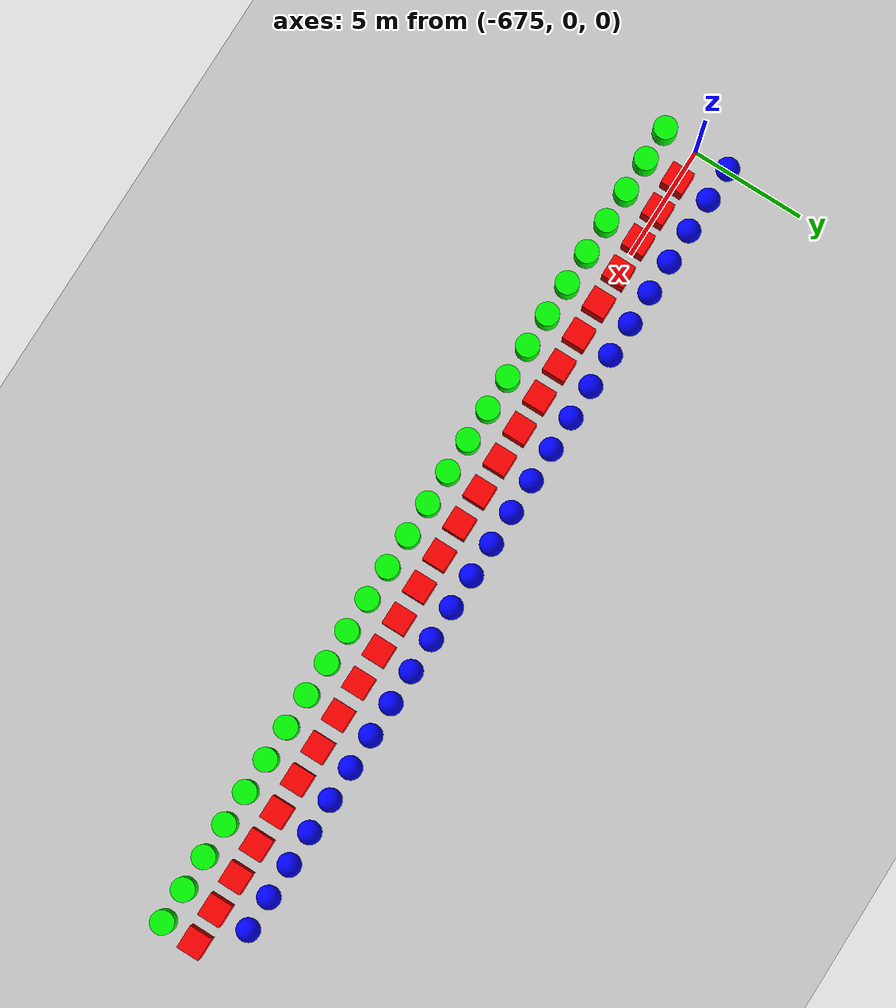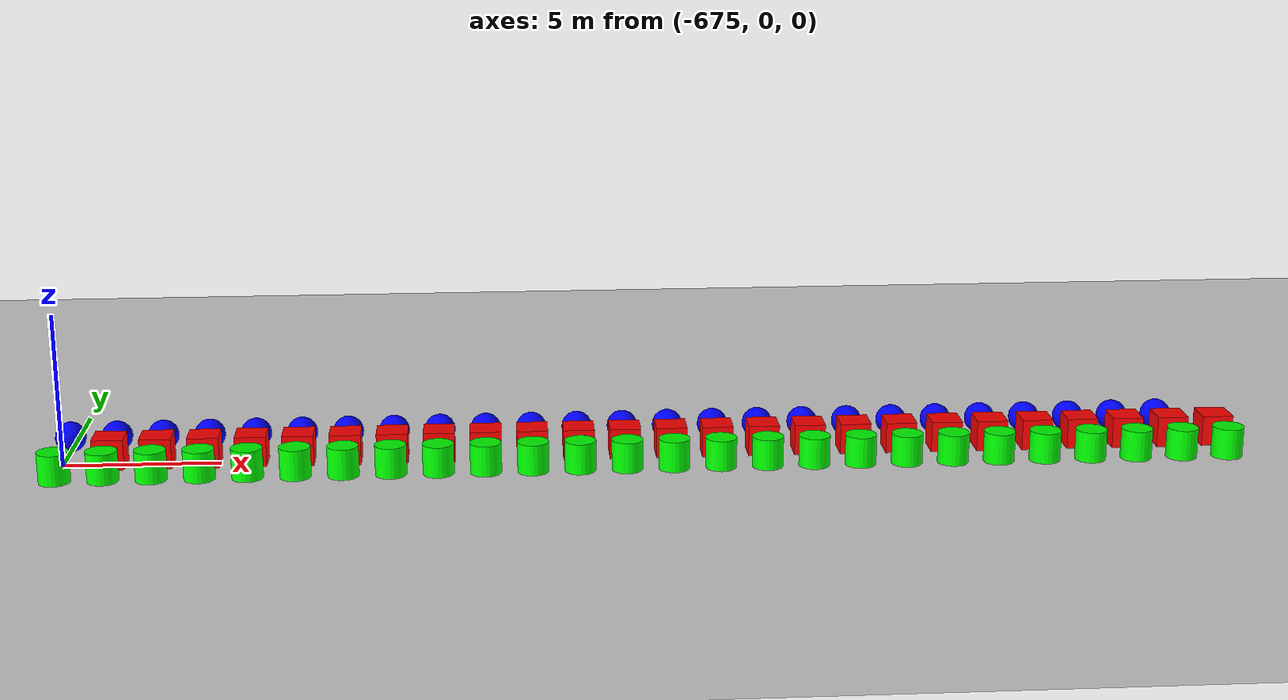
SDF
<sdf version="1.6">
 <world name="shapes">
  <model name="ground_plane">
   <static>true</static>
   <link name="link">
    <collision name="collision">
     <geometry><plane><normal>0 0 1</normal><size>100 100</size></plane></geometry>
    </collision>
    <visual name="visual">
     <geometry><plane><normal>0 0 1</normal><size>100 100</size></plane></geometry>
     <material>
      <ambient>0.8 0.8 0.8 1</ambient>
      <diffuse>0.8 0.8 0.8 1</diffuse>
      <specular>0.8 0.8 0.8 1</specular>
     </material>
    </visual>
   </link>
  </model>
  <model name="cylinder_50">
   <pose>-675.0 -1.5 0.5 0 0 0</pose>
   <link name="cylinder_link">
    <inertial>
     <inertia><ixx>2</ixx><ixy>0</ixy><ixz>0</ixz><iyy>2</iyy><iyz>0</iyz><izz>2</izz></inertia>
     <mass>2.0</mass>
    </inertial>
    <collision name="cylinder_collision">
     <geometry><cylinder><radius>0.5</radius><length>1.0</length></cylinder></geometry>
    </collision>
    <visual name="cylinder_visual">
     <geometry><cylinder><radius>0.5</radius><length>1.0</length></cylinder></geometry>
     <material><ambient>0 1 0 1</ambient><diffuse>0 1 0 1</diffuse><specular>0 1 0 1</specular></material>
    </visual>
   </link>
  </model>
  <model name="sphere_50">
   <pose>-675.0 1.5 0.5 0 0 0</pose>
   <link name="sphere_link">
    <inertial>
     <inertia><ixx>3</ixx><ixy>0</ixy><ixz>0</ixz><iyy>3</iyy><iyz>0</iyz><izz>3</izz></inertia>
     <mass>3.0</mass>
    </inertial>
    <collision name="sphere_collision"><geometry><sphere><radius>0.5</radius></sphere></geometry></collision>
    <visual name="sphere_visual">
     <geometry><sphere><radius>0.5</radius></sphere></geometry>
     <material><ambient>0 0 1 1</ambient><diffuse>0 0 1 1</diffuse><specular>0 0 1 1</specular></material>
    </visual>
   </link>
  </model>
  <model name="box_51">
   <pose>-673.5 0 0.5 0 0 0</pose>
   <link name="box_link">
    <inertial>
     <inertia><ixx>1</ixx><ixy>0</ixy><ixz>0</ixz><iyy>1</iyy><iyz>0</iyz><izz>1</izz></inertia>
     <mass>1.0</mass>
    </inertial>
    <collision name="box_collision"><geometry><box><size>1 1 1</size></box></geometry></collision>
    <visual name="box_visual">
     <geometry><box><size>1 1 1</size></box></geometry>
     <material><ambient>1 0 0 1</ambient><diffuse>1 0 0 1</diffuse><specular>1 0 0 1</specular></material>
    </visual>
   </link>
  </model>
  <model name="cylinder_51">
   <pose>-673.5 -1.5 0.5 0 0 0</pose>
   <link name="cylinder_link">
    <inertial>
     <inertia><ixx>2</ixx><ixy>0</ixy><ixz>0</ixz><iyy>2</iyy><iyz>0</iyz><izz>2</izz></inertia>
     <mass>2.0</mass>
    </inertial>
    <collision name="cylinder_collision">
     <geometry><cylinder><radius>0.5</radius><length>1.0</length></cylinder></geometry>
    </collision>
    <visual name="cylinder_visual">
     <geometry><cylinder><radius>0.5</radius><length>1.0</length></cylinder></geometry>
     <material><ambient>0 1 0 1</ambient><diffuse>0 1 0 1</diffuse><specular>0 1 0 1</specular></material>
    </visual>
   </link>
  </model>
  <model name="sphere_51">
   <pose>-673.5 1.5 0.5 0 0 0</pose>
   <link name="sphere_link">
    <inertial>
     <inertia><ixx>3</ixx><ixy>0</ixy><ixz>0</ixz><iyy>3</iyy><iyz>0</iyz><izz>3</izz></inertia>
     <mass>3.0</mass>
    </inertial>
    <collision name="sphere_collision"><geometry><sphere><radius>0.5</radius></sphere></geometry></collision>
    <visual name="sphere_visual">
     <geometry><sphere><radius>0.5</radius></sphere></geometry>
     <material><ambient>0 0 1 1</ambient><diffuse>0 0 1 1</diffuse><specular>0 0 1 1</specular></material>
    </visual>
   </link>
  </model>
  <model name="box_52">
   <pose>-672.0 0 0.5 0 0 0</pose>
   <link name="box_link">
    <inertial>
     <inertia><ixx>1</ixx><ixy>0</ixy><ixz>0</ixz><iyy>1</iyy><iyz>0</iyz><izz>1</izz></inertia>
     <mass>1.0</mass>
    </inertial>
    <collision name="box_collision"><geometry><box><size>1 1 1</size></box></geometry></collision>
    <visual name="box_visual">
     <geometry><box><size>1 1 1</size></box></geometry>
     <material><ambient>1 0 0 1</ambient><diffuse>1 0 0 1</diffuse><specular>1 0 0 1</specular></material>
    </visual>
   </link>
  </model>
  <model name="cylinder_52">
   <pose>-672.0 -1.5 0.5 0 0 0</pose>
   <link name="cylinder_link">
    <inertial>
     <inertia><ixx>2</ixx><ixy>0</ixy><ixz>0</ixz><iyy>2</iyy><iyz>0</iyz><izz>2</izz></inertia>
     <mass>2.0</mass>
    </inertial>
    <collision name="cylinder_collision">
     <geometry><cylinder><radius>0.5</radius><length>1.0</length></cylinder></geometry>
    </collision>
    <visual name="cylinder_visual">
     <geometry><cylinder><radius>0.5</radius><length>1.0</length></cylinder></geometry>
     <material><ambient>0 1 0 1</ambient><diffuse>0 1 0 1</diffuse><specular>0 1 0 1</specular></material>
    </visual>
   </link>
  </model>
  <model name="sphere_52">
   <pose>-672.0 1.5 0.5 0 0 0</pose>
   <link name="sphere_link">
    <inertial>
     <inertia><ixx>3</ixx><ixy>0</ixy><ixz>0</ixz><iyy>3</iyy><iyz>0</iyz><izz>3</izz></inertia>
     <mass>3.0</mass>
    </inertial>
    <collision name="sphere_collision"><geometry><sphere><radius>0.5</radius></sphere></geometry></collision>
    <visual name="sphere_visual">
     <geometry><sphere><radius>0.5</radius></sphere></geometry>
     <material><ambient>0 0 1 1</ambient><diffuse>0 0 1 1</diffuse><specular>0 0 1 1</specular></material>
    </visual>
   </link>
  </model>
  <model name="box_53">
   <pose>-670.5 0 0.5 0 0 0</pose>
   <link name="box_link">
    <inertial>
     <inertia><ixx>1</ixx><ixy>0</ixy><ixz>0</ixz><iyy>1</iyy><iyz>0</iyz><izz>1</izz></inertia>
     <mass>1.0</mass>
    </inertial>
    <collision name="box_collision"><geometry><box><size>1 1 1</size></box></geometry></collision>
    <visual name="box_visual">
     <geometry><box><size>1 1 1</size></box></geometry>
     <material><ambient>1 0 0 1</ambient><diffuse>1 0 0 1</diffuse><specular>1 0 0 1</specular></material>
    </visual>
   </link>
  </model>
  <model name="cylinder_53">
   <pose>-670.5 -1.5 0.5 0 0 0</pose>
   <link name="cylinder_link">
    <inertial>
     <inertia><ixx>2</ixx><ixy>0</ixy><ixz>0</ixz><iyy>2</iyy><iyz>0</iyz><izz>2</izz></inertia>
     <mass>2.0</mass>
    </inertial>
    <collision name="cylinder_collision">
     <geometry><cylinder><radius>0.5</radius><length>1.0</length></cylinder></geometry>
    </collision>
    <visual name="cylinder_visual">
     <geometry><cylinder><radius>0.5</radius><length>1.0</length></cylinder></geometry>
     <material><ambient>0 1 0 1</ambient><diffuse>0 1 0 1</diffuse><specular>0 1 0 1</specular></material>
    </visual>
   </link>
  </model>
  <model name="sphere_53">
   <pose>-670.5 1.5 0.5 0 0 0</pose>
   <link name="sphere_link">
    <inertial>
     <inertia><ixx>3</ixx><ixy>0</ixy><ixz>0</ixz><iyy>3</iyy><iyz>0</iyz><izz>3</izz></inertia>
     <mass>3.0</mass>
    </inertial>
    <collision name="sphere_collision"><geometry><sphere><radius>0.5</radius></sphere></geometry></collision>
    <visual name="sphere_visual">
     <geometry><sphere><radius>0.5</radius></sphere></geometry>
     <material><ambient>0 0 1 1</ambient><diffuse>0 0 1 1</diffuse><specular>0 0 1 1</specular></material>
    </visual>
   </link>
  </model>
  <model name="box_54">
   <pose>-669.0 0 0.5 0 0 0</pose>
   <link name="box_link">
    <inertial>
     <inertia><ixx>1</ixx><ixy>0</ixy><ixz>0</ixz><iyy>1</iyy><iyz>0</iyz><izz>1</izz></inertia>
     <mass>1.0</mass>
    </inertial>
    <collision name="box_collision"><geometry><box><size>1 1 1</size></box></geometry></collision>
    <visual name="box_visual">
     <geometry><box><size>1 1 1</size></box></geometry>
     <material><ambient>1 0 0 1</ambient><diffuse>1 0 0 1</diffuse><specular>1 0 0 1</specular></material>
    </visual>
   </link>
  </model>
  <model name="cylinder_54">
   <pose>-669.0 -1.5 0.5 0 0 0</pose>
   <link name="cylinder_link">
    <inertial>
     <inertia><ixx>2</ixx><ixy>0</ixy><ixz>0</ixz><iyy>2</iyy><iyz>0</iyz><izz>2</izz></inertia>
     <mass>2.0</mass>
    </inertial>
    <collision name="cylinder_collision">
     <geometry><cylinder><radius>0.5</radius><length>1.0</length></cylinder></geometry>
    </collision>
    <visual name="cylinder_visual">
     <geometry><cylinder><radius>0.5</radius><length>1.0</length></cylinder></geometry>
     <material><ambient>0 1 0 1</ambient><diffuse>0 1 0 1</diffuse><specular>0 1 0 1</specular></material>
    </visual>
   </link>
  </model>
  <model name="sphere_54">
   <pose>-669.0 1.5 0.5 0 0 0</pose>
   <link name="sphere_link">
    <inertial>
     <inertia><ixx>3</ixx><ixy>0</ixy><ixz>0</ixz><iyy>3</iyy><iyz>0</iyz><izz>3</izz></inertia>
     <mass>3.0</mass>
    </inertial>
    <collision name="sphere_collision"><geometry><sphere><radius>0.5</radius></sphere></geometry></collision>
    <visual name="sphere_visual">
     <geometry><sphere><radius>0.5</radius></sphere></geometry>
     <material><ambient>0 0 1 1</ambient><diffuse>0 0 1 1</diffuse><specular>0 0 1 1</specular></material>
    </visual>
   </link>
  </model>
  <model name="box_55">
   <pose>-667.5 0 0.5 0 0 0</pose>
   <link name="box_link">
    <inertial>
     <inertia><ixx>1</ixx><ixy>0</ixy><ixz>0</ixz><iyy>1</iyy><iyz>0</iyz><izz>1</izz></inertia>
     <mass>1.0</mass>
    </inertial>
    <collision name="box_collision"><geometry><box><size>1 1 1</size></box></geometry></collision>
    <visual name="box_visual">
     <geometry><box><size>1 1 1</size></box></geometry>
     <material><ambient>1 0 0 1</ambient><diffuse>1 0 0 1</diffuse><specular>1 0 0 1</specular></material>
    </visual>
   </link>
  </model>
  <model name="cylinder_55">
   <pose>-667.5 -1.5 0.5 0 0 0</pose>
   <link name="cylinder_link">
    <inertial>
     <inertia><ixx>2</ixx><ixy>0</ixy><ixz>0</ixz><iyy>2</iyy><iyz>0</iyz><izz>2</izz></inertia>
     <mass>2.0</mass>
    </inertial>
    <collision name="cylinder_collision">
     <geometry><cylinder><radius>0.5</radius><length>1.0</length></cylinder></geometry>
    </collision>
    <visual name="cylinder_visual">
     <geometry><cylinder><radius>0.5</radius><length>1.0</length></cylinder></geometry>
     <material><ambient>0 1 0 1</ambient><diffuse>0 1 0 1</diffuse><specular>0 1 0 1</specular></material>
    </visual>
   </link>
  </model>
  <model name="sphere_55">
   <pose>-667.5 1.5 0.5 0 0 0</pose>
   <link name="sphere_link">
    <inertial>
     <inertia><ixx>3</ixx><ixy>0</ixy><ixz>0</ixz><iyy>3</iyy><iyz>0</iyz><izz>3</izz></inertia>
     <mass>3.0</mass>
    </inertial>
    <collision name="sphere_collision"><geometry><sphere><radius>0.5</radius></sphere></geometry></collision>
    <visual name="sphere_visual">
     <geometry><sphere><radius>0.5</radius></sphere></geometry>
     <material><ambient>0 0 1 1</ambient><diffuse>0 0 1 1</diffuse><specular>0 0 1 1</specular></material>
    </visual>
   </link>
  </model>
  <model name="box_56">
   <pose>-666.0 0 0.5 0 0 0</pose>
   <link name="box_link">
    <inertial>
     <inertia><ixx>1</ixx><ixy>0</ixy><ixz>0</ixz><iyy>1</iyy><iyz>0</iyz><izz>1</izz></inertia>
     <mass>1.0</mass>
    </inertial>
    <collision name="box_collision"><geometry><box><size>1 1 1</size></box></geometry></collision>
    <visual name="box_visual">
     <geometry><box><size>1 1 1</size></box></geometry>
     <material><ambient>1 0 0 1</ambient><diffuse>1 0 0 1</diffuse><specular>1 0 0 1</specular></material>
    </visual>
   </link>
  </model>
  <model name="cylinder_56">
   <pose>-666.0 -1.5 0.5 0 0 0</pose>
   <link name="cylinder_link">
    <inertial>
     <inertia><ixx>2</ixx><ixy>0</ixy><ixz>0</ixz><iyy>2</iyy><iyz>0</iyz><izz>2</izz></inertia>
     <mass>2.0</mass>
    </inertial>
    <collision name="cylinder_collision">
     <geometry><cylinder><radius>0.5</radius><length>1.0</length></cylinder></geometry>
    </collision>
    <visual name="cylinder_visual">
     <geometry><cylinder><radius>0.5</radius><length>1.0</length></cylinder></geometry>
     <material><ambient>0 1 0 1</ambient><diffuse>0 1 0 1</diffuse><specular>0 1 0 1</specular></material>
    </visual>
   </link>
  </model>
  <model name="sphere_56">
   <pose>-666.0 1.5 0.5 0 0 0</pose>
   <link name="sphere_link">
    <inertial>
     <inertia><ixx>3</ixx><ixy>0</ixy><ixz>0</ixz><iyy>3</iyy><iyz>0</iyz><izz>3</izz></inertia>
     <mass>3.0</mass>
    </inertial>
    <collision name="sphere_collision"><geometry><sphere><radius>0.5</radius></sphere></geometry></collision>
    <visual name="sphere_visual">
     <geometry><sphere><radius>0.5</radius></sphere></geometry>
     <material><ambient>0 0 1 1</ambient><diffuse>0 0 1 1</diffuse><specular>0 0 1 1</specular></material>
    </visual>
   </link>
  </model>
  <model name="box_57">
   <pose>-664.5 0 0.5 0 0 0</pose>
   <link name="box_link">
    <inertial>
     <inertia><ixx>1</ixx><ixy>0</ixy><ixz>0</ixz><iyy>1</iyy><iyz>0</iyz><izz>1</izz></inertia>
     <mass>1.0</mass>
    </inertial>
    <collision name="box_collision"><geometry><box><size>1 1 1</size></box></geometry></collision>
    <visual name="box_visual">
     <geometry><box><size>1 1 1</size></box></geometry>
     <material><ambient>1 0 0 1</ambient><diffuse>1 0 0 1</diffuse><specular>1 0 0 1</specular></material>
    </visual>
   </link>
  </model>
  <model name="cylinder_57">
   <pose>-664.5 -1.5 0.5 0 0 0</pose>
   <link name="cylinder_link">
    <inertial>
     <inertia><ixx>2</ixx><ixy>0</ixy><ixz>0</ixz><iyy>2</iyy><iyz>0</iyz><izz>2</izz></inertia>
     <mass>2.0</mass>
    </inertial>
    <collision name="cylinder_collision">
     <geometry><cylinder><radius>0.5</radius><length>1.0</length></cylinder></geometry>
    </collision>
    <visual name="cylinder_visual">
     <geometry><cylinder><radius>0.5</radius><length>1.0</length></cylinder></geometry>
     <material><ambient>0 1 0 1</ambient><diffuse>0 1 0 1</diffuse><specular>0 1 0 1</specular></material>
    </visual>
   </link>
  </model>
  <model name="sphere_57">
   <pose>-664.5 1.5 0.5 0 0 0</pose>
   <link name="sphere_link">
    <inertial>
     <inertia><ixx>3</ixx><ixy>0</ixy><ixz>0</ixz><iyy>3</iyy><iyz>0</iyz><izz>3</izz></inertia>
     <mass>3.0</mass>
    </inertial>
    <collision name="sphere_collision"><geometry><sphere><radius>0.5</radius></sphere></geometry></collision>
    <visual name="sphere_visual">
     <geometry><sphere><radius>0.5</radius></sphere></geometry>
     <material><ambient>0 0 1 1</ambient><diffuse>0 0 1 1</diffuse><specular>0 0 1 1</specular></material>
    </visual>
   </link>
  </model>
  <model name="box_58">
   <pose>-663.0 0 0.5 0 0 0</pose>
   <link name="box_link">
    <inertial>
     <inertia><ixx>1</ixx><ixy>0</ixy><ixz>0</ixz><iyy>1</iyy><iyz>0</iyz><izz>1</izz></inertia>
     <mass>1.0</mass>
    </inertial>
    <collision name="box_collision"><geometry><box><size>1 1 1</size></box></geometry></collision>
    <visual name="box_visual">
     <geometry><box><size>1 1 1</size></box></geometry>
     <material><ambient>1 0 0 1</ambient><diffuse>1 0 0 1</diffuse><specular>1 0 0 1</specular></material>
    </visual>
   </link>
  </model>
  <model name="cylinder_58">
   <pose>-663.0 -1.5 0.5 0 0 0</pose>
   <link name="cylinder_link">
    <inertial>
     <inertia><ixx>2</ixx><ixy>0</ixy><ixz>0</ixz><iyy>2</iyy><iyz>0</iyz><izz>2</izz></inertia>
     <mass>2.0</mass>
    </inertial>
    <collision name="cylinder_collision">
     <geometry><cylinder><radius>0.5</radius><length>1.0</length></cylinder></geometry>
    </collision>
    <visual name="cylinder_visual">
     <geometry><cylinder><radius>0.5</radius><length>1.0</length></cylinder></geometry>
     <material><ambient>0 1 0 1</ambient><diffuse>0 1 0 1</diffuse><specular>0 1 0 1</specular></material>
    </visual>
   </link>
  </model>
  <model name="sphere_58">
   <pose>-663.0 1.5 0.5 0 0 0</pose>
   <link name="sphere_link">
    <inertial>
     <inertia><ixx>3</ixx><ixy>0</ixy><ixz>0</ixz><iyy>3</iyy><iyz>0</iyz><izz>3</izz></inertia>
     <mass>3.0</mass>
    </inertial>
    <collision name="sphere_collision"><geometry><sphere><radius>0.5</radius></sphere></geometry></collision>
    <visual name="sphere_visual">
     <geometry><sphere><radius>0.5</radius></sphere></geometry>
     <material><ambient>0 0 1 1</ambient><diffuse>0 0 1 1</diffuse><specular>0 0 1 1</specular></material>
    </visual>
   </link>
  </model>
  <model name="box_59">
   <pose>-661.5 0 0.5 0 0 0</pose>
   <link name="box_link">
    <inertial>
     <inertia><ixx>1</ixx><ixy>0</ixy><ixz>0</ixz><iyy>1</iyy><iyz>0</iyz><izz>1</izz></inertia>
     <mass>1.0</mass>
    </inertial>
    <collision name="box_collision"><geometry><box><size>1 1 1</size></box></geometry></collision>
    <visual name="box_visual">
     <geometry><box><size>1 1 1</size></box></geometry>
     <material><ambient>1 0 0 1</ambient><diffuse>1 0 0 1</diffuse><specular>1 0 0 1</specular></material>
    </visual>
   </link>
  </model>
  <model name="cylinder_59">
   <pose>-661.5 -1.5 0.5 0 0 0</pose>
   <link name="cylinder_link">
    <inertial>
     <inertia><ixx>2</ixx><ixy>0</ixy><ixz>0</ixz><iyy>2</iyy><iyz>0</iyz><izz>2</izz></inertia>
     <mass>2.0</mass>
    </inertial>
    <collision name="cylinder_collision">
     <geometry><cylinder><radius>0.5</radius><length>1.0</length></cylinder></geometry>
    </collision>
    <visual name="cylinder_visual">
     <geometry><cylinder><radius>0.5</radius><length>1.0</length></cylinder></geometry>
     <material><ambient>0 1 0 1</ambient><diffuse>0 1 0 1</diffuse><specular>0 1 0 1</specular></material>
    </visual>
   </link>
  </model>
  <model name="sphere_59">
   <pose>-661.5 1.5 0.5 0 0 0</pose>
   <link name="sphere_link">
    <inertial>
     <inertia><ixx>3</ixx><ixy>0</ixy><ixz>0</ixz><iyy>3</iyy><iyz>0</iyz><izz>3</izz></inertia>
     <mass>3.0</mass>
    </inertial>
    <collision name="sphere_collision"><geometry><sphere><radius>0.5</radius></sphere></geometry></collision>
    <visual name="sphere_visual">
     <geometry><sphere><radius>0.5</radius></sphere></geometry>
     <material><ambient>0 0 1 1</ambient><diffuse>0 0 1 1</diffuse><specular>0 0 1 1</specular></material>
    </visual>
   </link>
  </model>
  <model name="box_60">
   <pose>-660.0 0 0.5 0 0 0</pose>
   <link name="box_link">
    <inertial>
     <inertia><ixx>1</ixx><ixy>0</ixy><ixz>0</ixz><iyy>1</iyy><iyz>0</iyz><izz>1</izz></inertia>
     <mass>1.0</mass>
    </inertial>
    <collision name="box_collision"><geometry><box><size>1 1 1</size></box></geometry></collision>
    <visual name="box_visual">
     <geometry><box><size>1 1 1</size></box></geometry>
     <material><ambient>1 0 0 1</ambient><diffuse>1 0 0 1</diffuse><specular>1 0 0 1</specular></material>
    </visual>
   </link>
  </model>
  <model name="cylinder_60">
   <pose>-660.0 -1.5 0.5 0 0 0</pose>
   <link name="cylinder_link">
    <inertial>
     <inertia><ixx>2</ixx><ixy>0</ixy><ixz>0</ixz><iyy>2</iyy><iyz>0</iyz><izz>2</izz></inertia>
     <mass>2.0</mass>
    </inertial>
    <collision name="cylinder_collision">
     <geometry><cylinder><radius>0.5</radius><length>1.0</length></cylinder></geometry>
    </collision>
    <visual name="cylinder_visual">
     <geometry><cylinder><radius>0.5</radius><length>1.0</length></cylinder></geometry>
     <material><ambient>0 1 0 1</ambient><diffuse>0 1 0 1</diffuse><specular>0 1 0 1</specular></material>
    </visual>
   </link>
  </model>
  <model name="sphere_60">
   <pose>-660.0 1.5 0.5 0 0 0</pose>
   <link name="sphere_link">
    <inertial>
     <inertia><ixx>3</ixx><ixy>0</ixy><ixz>0</ixz><iyy>3</iyy><iyz>0</iyz><izz>3</izz></inertia>
     <mass>3.0</mass>
    </inertial>
    <collision name="sphere_collision"><geometry><sphere><radius>0.5</radius></sphere></geometry></collision>
    <visual name="sphere_visual">
     <geometry><sphere><radius>0.5</radius></sphere></geometry>
     <material><ambient>0 0 1 1</ambient><diffuse>0 0 1 1</diffuse><specular>0 0 1 1</specular></material>
    </visual>
   </link>
  </model>
  <model name="box_61">
   <pose>-658.5 0 0.5 0 0 0</pose>
   <link name="box_link">
    <inertial>
     <inertia><ixx>1</ixx><ixy>0</ixy><ixz>0</ixz><iyy>1</iyy><iyz>0</iyz><izz>1</izz></inertia>
     <mass>1.0</mass>
    </inertial>
    <collision name="box_collision"><geometry><box><size>1 1 1</size></box></geometry></collision>
    <visual name="box_visual">
     <geometry><box><size>1 1 1</size></box></geometry>
     <material><ambient>1 0 0 1</ambient><diffuse>1 0 0 1</diffuse><specular>1 0 0 1</specular></material>
    </visual>
   </link>
  </model>
  <model name="cylinder_61">
   <pose>-658.5 -1.5 0.5 0 0 0</pose>
   <link name="cylinder_link">
    <inertial>
     <inertia><ixx>2</ixx><ixy>0</ixy><ixz>0</ixz><iyy>2</iyy><iyz>0</iyz><izz>2</izz></inertia>
     <mass>2.0</mass>
    </inertial>
    <collision name="cylinder_collision">
     <geometry><cylinder><radius>0.5</radius><length>1.0</length></cylinder></geometry>
    </collision>
    <visual name="cylinder_visual">
     <geometry><cylinder><radius>0.5</radius><length>1.0</length></cylinder></geometry>
     <material><ambient>0 1 0 1</ambient><diffuse>0 1 0 1</diffuse><specular>0 1 0 1</specular></material>
    </visual>
   </link>
  </model>
  <model name="sphere_61">
   <pose>-658.5 1.5 0.5 0 0 0</pose>
   <link name="sphere_link">
    <inertial>
     <inertia><ixx>3</ixx><ixy>0</ixy><ixz>0</ixz><iyy>3</iyy><iyz>0</iyz><izz>3</izz></inertia>
     <mass>3.0</mass>
    </inertial>
    <collision name="sphere_collision"><geometry><sphere><radius>0.5</radius></sphere></geometry></collision>
    <visual name="sphere_visual">
     <geometry><sphere><radius>0.5</radius></sphere></geometry>
     <material><ambient>0 0 1 1</ambient><diffuse>0 0 1 1</diffuse><specular>0 0 1 1</specular></material>
    </visual>
   </link>
  </model>
  <model name="box_62">
   <pose>-657.0 0 0.5 0 0 0</pose>
   <link name="box_link">
    <inertial>
     <inertia><ixx>1</ixx><ixy>0</ixy><ixz>0</ixz><iyy>1</iyy><iyz>0</iyz><izz>1</izz></inertia>
     <mass>1.0</mass>
    </inertial>
    <collision name="box_collision"><geometry><box><size>1 1 1</size></box></geometry></collision>
    <visual name="box_visual">
     <geometry><box><size>1 1 1</size></box></geometry>
     <material><ambient>1 0 0 1</ambient><diffuse>1 0 0 1</diffuse><specular>1 0 0 1</specular></material>
    </visual>
   </link>
  </model>
  <model name="cylinder_62">
   <pose>-657.0 -1.5 0.5 0 0 0</pose>
   <link name="cylinder_link">
    <inertial>
     <inertia><ixx>2</ixx><ixy>0</ixy><ixz>0</ixz><iyy>2</iyy><iyz>0</iyz><izz>2</izz></inertia>
     <mass>2.0</mass>
    </inertial>
    <collision name="cylinder_collision">
     <geometry><cylinder><radius>0.5</radius><length>1.0</length></cylinder></geometry>
    </collision>
    <visual name="cylinder_visual">
     <geometry><cylinder><radius>0.5</radius><length>1.0</length></cylinder></geometry>
     <material><ambient>0 1 0 1</ambient><diffuse>0 1 0 1</diffuse><specular>0 1 0 1</specular></material>
    </visual>
   </link>
  </model>
  <model name="sphere_62">
   <pose>-657.0 1.5 0.5 0 0 0</pose>
   <link name="sphere_link">
    <inertial>
     <inertia><ixx>3</ixx><ixy>0</ixy><ixz>0</ixz><iyy>3</iyy><iyz>0</iyz><izz>3</izz></inertia>
     <mass>3.0</mass>
    </inertial>
    <collision name="sphere_collision"><geometry><sphere><radius>0.5</radius></sphere></geometry></collision>
    <visual name="sphere_visual">
     <geometry><sphere><radius>0.5</radius></sphere></geometry>
     <material><ambient>0 0 1 1</ambient><diffuse>0 0 1 1</diffuse><specular>0 0 1 1</specular></material>
    </visual>
   </link>
  </model>
  <model name="box_63">
   <pose>-655.5 0 0.5 0 0 0</pose>
   <link name="box_link">
    <inertial>
     <inertia><ixx>1</ixx><ixy>0</ixy><ixz>0</ixz><iyy>1</iyy><iyz>0</iyz><izz>1</izz></inertia>
     <mass>1.0</mass>
    </inertial>
    <collision name="box_collision"><geometry><box><size>1 1 1</size></box></geometry></collision>
    <visual name="box_visual">
     <geometry><box><size>1 1 1</size></box></geometry>
     <material><ambient>1 0 0 1</ambient><diffuse>1 0 0 1</diffuse><specular>1 0 0 1</specular></material>
    </visual>
   </link>
  </model>
  <model name="cylinder_63">
   <pose>-655.5 -1.5 0.5 0 0 0</pose>
   <link name="cylinder_link">
    <inertial>
     <inertia><ixx>2</ixx><ixy>0</ixy><ixz>0</ixz><iyy>2</iyy><iyz>0</iyz><izz>2</izz></inertia>
     <mass>2.0</mass>
    </inertial>
    <collision name="cylinder_collision">
     <geometry><cylinder><radius>0.5</radius><length>1.0</length></cylinder></geometry>
    </collision>
    <visual name="cylinder_visual">
     <geometry><cylinder><radius>0.5</radius><length>1.0</length></cylinder></geometry>
     <material><ambient>0 1 0 1</ambient><diffuse>0 1 0 1</diffuse><specular>0 1 0 1</specular></material>
    </visual>
   </link>
  </model>
  <model name="sphere_63">
   <pose>-655.5 1.5 0.5 0 0 0</pose>
   <link name="sphere_link">
    <inertial>
     <inertia><ixx>3</ixx><ixy>0</ixy><ixz>0</ixz><iyy>3</iyy><iyz>0</iyz><izz>3</izz></inertia>
     <mass>3.0</mass>
    </inertial>
    <collision name="sphere_collision"><geometry><sphere><radius>0.5</radius></sphere></geometry></collision>
    <visual name="sphere_visual">
     <geometry><sphere><radius>0.5</radius></sphere></geometry>
     <material><ambient>0 0 1 1</ambient><diffuse>0 0 1 1</diffuse><specular>0 0 1 1</specular></material>
    </visual>
   </link>
  </model>
  <model name="box_64">
   <pose>-654.0 0 0.5 0 0 0</pose>
   <link name="box_link">
    <inertial>
     <inertia><ixx>1</ixx><ixy>0</ixy><ixz>0</ixz><iyy>1</iyy><iyz>0</iyz><izz>1</izz></inertia>
     <mass>1.0</mass>
    </inertial>
    <collision name="box_collision"><geometry><box><size>1 1 1</size></box></geometry></collision>
    <visual name="box_visual">
     <geometry><box><size>1 1 1</size></box></geometry>
     <material><ambient>1 0 0 1</ambient><diffuse>1 0 0 1</diffuse><specular>1 0 0 1</specular></material>
    </visual>
   </link>
  </model>
  <model name="cylinder_64">
   <pose>-654.0 -1.5 0.5 0 0 0</pose>
   <link name="cylinder_link">
    <inertial>
     <inertia><ixx>2</ixx><ixy>0</ixy><ixz>0</ixz><iyy>2</iyy><iyz>0</iyz><izz>2</izz></inertia>
     <mass>2.0</mass>
    </inertial>
    <collision name="cylinder_collision">
     <geometry><cylinder><radius>0.5</radius><length>1.0</length></cylinder></geometry>
    </collision>
    <visual name="cylinder_visual">
     <geometry><cylinder><radius>0.5</radius><length>1.0</length></cylinder></geometry>
     <material><ambient>0 1 0 1</ambient><diffuse>0 1 0 1</diffuse><specular>0 1 0 1</specular></material>
    </visual>
   </link>
  </model>
  <model name="sphere_64">
   <pose>-654.0 1.5 0.5 0 0 0</pose>
   <link name="sphere_link">
    <inertial>
     <inertia><ixx>3</ixx><ixy>0</ixy><ixz>0</ixz><iyy>3</iyy><iyz>0</iyz><izz>3</izz></inertia>
     <mass>3.0</mass>
    </inertial>
    <collision name="sphere_collision"><geometry><sphere><radius>0.5</radius></sphere></geometry></collision>
    <visual name="sphere_visual">
     <geometry><sphere><radius>0.5</radius></sphere></geometry>
     <material><ambient>0 0 1 1</ambient><diffuse>0 0 1 1</diffuse><specular>0 0 1 1</specular></material>
    </visual>
   </link>
  </model>
  <model name="box_65">
   <pose>-652.5 0 0.5 0 0 0</pose>
   <link name="box_link">
    <inertial>
     <inertia><ixx>1</ixx><ixy>0</ixy><ixz>0</ixz><iyy>1</iyy><iyz>0</iyz><izz>1</izz></inertia>
     <mass>1.0</mass>
    </inertial>
    <collision name="box_collision"><geometry><box><size>1 1 1</size></box></geometry></collision>
    <visual name="box_visual">
     <geometry><box><size>1 1 1</size></box></geometry>
     <material><ambient>1 0 0 1</ambient><diffuse>1 0 0 1</diffuse><specular>1 0 0 1</specular></material>
    </visual>
   </link>
  </model>
  <model name="cylinder_65">
   <pose>-652.5 -1.5 0.5 0 0 0</pose>
   <link name="cylinder_link">
    <inertial>
     <inertia><ixx>2</ixx><ixy>0</ixy><ixz>0</ixz><iyy>2</iyy><iyz>0</iyz><izz>2</izz></inertia>
     <mass>2.0</mass>
    </inertial>
    <collision name="cylinder_collision">
     <geometry><cylinder><radius>0.5</radius><length>1.0</length></cylinder></geometry>
    </collision>
    <visual name="cylinder_visual">
     <geometry><cylinder><radius>0.5</radius><length>1.0</length></cylinder></geometry>
     <material><ambient>0 1 0 1</ambient><diffuse>0 1 0 1</diffuse><specular>0 1 0 1</specular></material>
    </visual>
   </link>
  </model>
  <model name="sphere_65">
   <pose>-652.5 1.5 0.5 0 0 0</pose>
   <link name="sphere_link">
    <inertial>
     <inertia><ixx>3</ixx><ixy>0</ixy><ixz>0</ixz><iyy>3</iyy><iyz>0</iyz><izz>3</izz></inertia>
     <mass>3.0</mass>
    </inertial>
    <collision name="sphere_collision"><geometry><sphere><radius>0.5</radius></sphere></geometry></collision>
    <visual name="sphere_visual">
     <geometry><sphere><radius>0.5</radius></sphere></geometry>
     <material><ambient>0 0 1 1</ambient><diffuse>0 0 1 1</diffuse><specular>0 0 1 1</specular></material>
    </visual>
   </link>
  </model>
  <model name="box_66">
   <pose>-651.0 0 0.5 0 0 0</pose>
   <link name="box_link">
    <inertial>
     <inertia><ixx>1</ixx><ixy>0</ixy><ixz>0</ixz><iyy>1</iyy><iyz>0</iyz><izz>1</izz></inertia>
     <mass>1.0</mass>
    </inertial>
    <collision name="box_collision"><geometry><box><size>1 1 1</size></box></geometry></collision>
    <visual name="box_visual">
     <geometry><box><size>1 1 1</size></box></geometry>
     <material><ambient>1 0 0 1</ambient><diffuse>1 0 0 1</diffuse><specular>1 0 0 1</specular></material>
    </visual>
   </link>
  </model>
  <model name="cylinder_66">
   <pose>-651.0 -1.5 0.5 0 0 0</pose>
   <link name="cylinder_link">
    <inertial>
     <inertia><ixx>2</ixx><ixy>0</ixy><ixz>0</ixz><iyy>2</iyy><iyz>0</iyz><izz>2</izz></inertia>
     <mass>2.0</mass>
    </inertial>
    <collision name="cylinder_collision">
     <geometry><cylinder><radius>0.5</radius><length>1.0</length></cylinder></geometry>
    </collision>
    <visual name="cylinder_visual">
     <geometry><cylinder><radius>0.5</radius><length>1.0</length></cylinder></geometry>
     <material><ambient>0 1 0 1</ambient><diffuse>0 1 0 1</diffuse><specular>0 1 0 1</specular></material>
    </visual>
   </link>
  </model>
  <model name="sphere_66">
   <pose>-651.0 1.5 0.5 0 0 0</pose>
   <link name="sphere_link">
    <inertial>
     <inertia><ixx>3</ixx><ixy>0</ixy><ixz>0</ixz><iyy>3</iyy><iyz>0</iyz><izz>3</izz></inertia>
     <mass>3.0</mass>
    </inertial>
    <collision name="sphere_collision"><geometry><sphere><radius>0.5</radius></sphere></geometry></collision>
    <visual name="sphere_visual">
     <geometry><sphere><radius>0.5</radius></sphere></geometry>
     <material><ambient>0 0 1 1</ambient><diffuse>0 0 1 1</diffuse><specular>0 0 1 1</specular></material>
    </visual>
   </link>
  </model>
  <model name="box_67">
   <pose>-649.5 0 0.5 0 0 0</pose>
   <link name="box_link">
    <inertial>
     <inertia><ixx>1</ixx><ixy>0</ixy><ixz>0</ixz><iyy>1</iyy><iyz>0</iyz><izz>1</izz></inertia>
     <mass>1.0</mass>
    </inertial>
    <collision name="box_collision"><geometry><box><size>1 1 1</size></box></geometry></collision>
    <visual name="box_visual">
     <geometry><box><size>1 1 1</size></box></geometry>
     <material><ambient>1 0 0 1</ambient><diffuse>1 0 0 1</diffuse><specular>1 0 0 1</specular></material>
    </visual>
   </link>
  </model>
  <model name="cylinder_67">
   <pose>-649.5 -1.5 0.5 0 0 0</pose>
   <link name="cylinder_link">
    <inertial>
     <inertia><ixx>2</ixx><ixy>0</ixy><ixz>0</ixz><iyy>2</iyy><iyz>0</iyz><izz>2</izz></inertia>
     <mass>2.0</mass>
    </inertial>
    <collision name="cylinder_collision">
     <geometry><cylinder><radius>0.5</radius><length>1.0</length></cylinder></geometry>
    </collision>
    <visual name="cylinder_visual">
     <geometry><cylinder><radius>0.5</radius><length>1.0</length></cylinder></geometry>
     <material><ambient>0 1 0 1</ambient><diffuse>0 1 0 1</diffuse><specular>0 1 0 1</specular></material>
    </visual>
   </link>
  </model>
  <model name="sphere_67">
   <pose>-649.5 1.5 0.5 0 0 0</pose>
   <link name="sphere_link">
    <inertial>
     <inertia><ixx>3</ixx><ixy>0</ixy><ixz>0</ixz><iyy>3</iyy><iyz>0</iyz><izz>3</izz></inertia>
     <mass>3.0</mass>
    </inertial>
    <collision name="sphere_collision"><geometry><sphere><radius>0.5</radius></sphere></geometry></collision>
    <visual name="sphere_visual">
     <geometry><sphere><radius>0.5</radius></sphere></geometry>
     <material><ambient>0 0 1 1</ambient><diffuse>0 0 1 1</diffuse><specular>0 0 1 1</specular></material>
    </visual>
   </link>
  </model>
  <model name="box_68">
   <pose>-648.0 0 0.5 0 0 0</pose>
   <link name="box_link">
    <inertial>
     <inertia><ixx>1</ixx><ixy>0</ixy><ixz>0</ixz><iyy>1</iyy><iyz>0</iyz><izz>1</izz></inertia>
     <mass>1.0</mass>
    </inertial>
    <collision name="box_collision"><geometry><box><size>1 1 1</size></box></geometry></collision>
    <visual name="box_visual">
     <geometry><box><size>1 1 1</size></box></geometry>
     <material><ambient>1 0 0 1</ambient><diffuse>1 0 0 1</diffuse><specular>1 0 0 1</specular></material>
    </visual>
   </link>
  </model>
  <model name="cylinder_68">
   <pose>-648.0 -1.5 0.5 0 0 0</pose>
   <link name="cylinder_link">
    <inertial>
     <inertia><ixx>2</ixx><ixy>0</ixy><ixz>0</ixz><iyy>2</iyy><iyz>0</iyz><izz>2</izz></inertia>
     <mass>2.0</mass>
    </inertial>
    <collision name="cylinder_collision">
     <geometry><cylinder><radius>0.5</radius><length>1.0</length></cylinder></geometry>
    </collision>
    <visual name="cylinder_visual">
     <geometry><cylinder><radius>0.5</radius><length>1.0</length></cylinder></geometry>
     <material><ambient>0 1 0 1</ambient><diffuse>0 1 0 1</diffuse><specular>0 1 0 1</specular></material>
    </visual>
   </link>
  </model>
  <model name="sphere_68">
   <pose>-648.0 1.5 0.5 0 0 0</pose>
   <link name="sphere_link">
    <inertial>
     <inertia><ixx>3</ixx><ixy>0</ixy><ixz>0</ixz><iyy>3</iyy><iyz>0</iyz><izz>3</izz></inertia>
     <mass>3.0</mass>
    </inertial>
    <collision name="sphere_collision"><geometry><sphere><radius>0.5</radius></sphere></geometry></collision>
    <visual name="sphere_visual">
     <geometry><sphere><radius>0.5</radius></sphere></geometry>
     <material><ambient>0 0 1 1</ambient><diffuse>0 0 1 1</diffuse><specular>0 0 1 1</specular></material>
    </visual>
   </link>
  </model>
  <model name="box_69">
   <pose>-646.5 0 0.5 0 0 0</pose>
   <link name="box_link">
    <inertial>
     <inertia><ixx>1</ixx><ixy>0</ixy><ixz>0</ixz><iyy>1</iyy><iyz>0</iyz><izz>1</izz></inertia>
     <mass>1.0</mass>
    </inertial>
    <collision name="box_collision"><geometry><box><size>1 1 1</size></box></geometry></collision>
    <visual name="box_visual">
     <geometry><box><size>1 1 1</size></box></geometry>
     <material><ambient>1 0 0 1</ambient><diffuse>1 0 0 1</diffuse><specular>1 0 0 1</specular></material>
    </visual>
   </link>
  </model>
  <model name="cylinder_69">
   <pose>-646.5 -1.5 0.5 0 0 0</pose>
   <link name="cylinder_link">
    <inertial>
     <inertia><ixx>2</ixx><ixy>0</ixy><ixz>0</ixz><iyy>2</iyy><iyz>0</iyz><izz>2</izz></inertia>
     <mass>2.0</mass>
    </inertial>
    <collision name="cylinder_collision">
     <geometry><cylinder><radius>0.5</radius><length>1.0</length></cylinder></geometry>
    </collision>
    <visual name="cylinder_visual">
     <geometry><cylinder><radius>0.5</radius><length>1.0</length></cylinder></geometry>
     <material><ambient>0 1 0 1</ambient><diffuse>0 1 0 1</diffuse><specular>0 1 0 1</specular></material>
    </visual>
   </link>
  </model>
  <model name="sphere_69">
   <pose>-646.5 1.5 0.5 0 0 0</pose>
   <link name="sphere_link">
    <inertial>
     <inertia><ixx>3</ixx><ixy>0</ixy><ixz>0</ixz><iyy>3</iyy><iyz>0</iyz><izz>3</izz></inertia>
     <mass>3.0</mass>
    </inertial>
    <collision name="sphere_collision"><geometry><sphere><radius>0.5</radius></sphere></geometry></collision>
    <visual name="sphere_visual">
     <geometry><sphere><radius>0.5</radius></sphere></geometry>
     <material><ambient>0 0 1 1</ambient><diffuse>0 0 1 1</diffuse><specular>0 0 1 1</specular></material>
    </visual>
   </link>
  </model>
  <model name="box_70">
   <pose>-645.0 0 0.5 0 0 0</pose>
   <link name="box_link">
    <inertial>
     <inertia><ixx>1</ixx><ixy>0</ixy><ixz>0</ixz><iyy>1</iyy><iyz>0</iyz><izz>1</izz></inertia>
     <mass>1.0</mass>
    </inertial>
    <collision name="box_collision"><geometry><box><size>1 1 1</size></box></geometry></collision>
    <visual name="box_visual">
     <geometry><box><size>1 1 1</size></box></geometry>
     <material><ambient>1 0 0 1</ambient><diffuse>1 0 0 1</diffuse><specular>1 0 0 1</specular></material>
    </visual>
   </link>
  </model>
  <model name="cylinder_70">
   <pose>-645.0 -1.5 0.5 0 0 0</pose>
   <link name="cylinder_link">
    <inertial>
     <inertia><ixx>2</ixx><ixy>0</ixy><ixz>0</ixz><iyy>2</iyy><iyz>0</iyz><izz>2</izz></inertia>
     <mass>2.0</mass>
    </inertial>
    <collision name="cylinder_collision">
     <geometry><cylinder><radius>0.5</radius><length>1.0</length></cylinder></geometry>
    </collision>
    <visual name="cylinder_visual">
     <geometry><cylinder><radius>0.5</radius><length>1.0</length></cylinder></geometry>
     <material><ambient>0 1 0 1</ambient><diffuse>0 1 0 1</diffuse><specular>0 1 0 1</specular></material>
    </visual>
   </link>
  </model>
  <model name="sphere_70">
   <pose>-645.0 1.5 0.5 0 0 0</pose>
   <link name="sphere_link">
    <inertial>
     <inertia><ixx>3</ixx><ixy>0</ixy><ixz>0</ixz><iyy>3</iyy><iyz>0</iyz><izz>3</izz></inertia>
     <mass>3.0</mass>
    </inertial>
    <collision name="sphere_collision"><geometry><sphere><radius>0.5</radius></sphere></geometry></collision>
    <visual name="sphere_visual">
     <geometry><sphere><radius>0.5</radius></sphere></geometry>
     <material><ambient>0 0 1 1</ambient><diffuse>0 0 1 1</diffuse><specular>0 0 1 1</specular></material>
    </visual>
   </link>
  </model>
  <model name="box_71">
   <pose>-643.5 0 0.5 0 0 0</pose>
   <link name="box_link">
    <inertial>
     <inertia><ixx>1</ixx><ixy>0</ixy><ixz>0</ixz><iyy>1</iyy><iyz>0</iyz><izz>1</izz></inertia>
     <mass>1.0</mass>
    </inertial>
    <collision name="box_collision"><geometry><box><size>1 1 1</size></box></geometry></collision>
    <visual name="box_visual">
     <geometry><box><size>1 1 1</size></box></geometry>
     <material><ambient>1 0 0 1</ambient><diffuse>1 0 0 1</diffuse><specular>1 0 0 1</specular></material>
    </visual>
   </link>
  </model>
  <model name="cylinder_71">
   <pose>-643.5 -1.5 0.5 0 0 0</pose>
   <link name="cylinder_link">
    <inertial>
     <inertia><ixx>2</ixx><ixy>0</ixy><ixz>0</ixz><iyy>2</iyy><iyz>0</iyz><izz>2</izz></inertia>
     <mass>2.0</mass>
    </inertial>
    <collision name="cylinder_collision">
     <geometry><cylinder><radius>0.5</radius><length>1.0</length></cylinder></geometry>
    </collision>
    <visual name="cylinder_visual">
     <geometry><cylinder><radius>0.5</radius><length>1.0</length></cylinder></geometry>
     <material><ambient>0 1 0 1</ambient><diffuse>0 1 0 1</diffuse><specular>0 1 0 1</specular></material>
    </visual>
   </link>
  </model>
  <model name="sphere_71">
   <pose>-643.5 1.5 0.5 0 0 0</pose>
   <link name="sphere_link">
    <inertial>
     <inertia><ixx>3</ixx><ixy>0</ixy><ixz>0</ixz><iyy>3</iyy><iyz>0</iyz><izz>3</izz></inertia>
     <mass>3.0</mass>
    </inertial>
    <collision name="sphere_collision"><geometry><sphere><radius>0.5</radius></sphere></geometry></collision>
    <visual name="sphere_visual">
     <geometry><sphere><radius>0.5</radius></sphere></geometry>
     <material><ambient>0 0 1 1</ambient><diffuse>0 0 1 1</diffuse><specular>0 0 1 1</specular></material>
    </visual>
   </link>
  </model>
  <model name="box_72">
   <pose>-642.0 0 0.5 0 0 0</pose>
   <link name="box_link">
    <inertial>
     <inertia><ixx>1</ixx><ixy>0</ixy><ixz>0</ixz><iyy>1</iyy><iyz>0</iyz><izz>1</izz></inertia>
     <mass>1.0</mass>
    </inertial>
    <collision name="box_collision"><geometry><box><size>1 1 1</size></box></geometry></collision>
    <visual name="box_visual">
     <geometry><box><size>1 1 1</size></box></geometry>
     <material><ambient>1 0 0 1</ambient><diffuse>1 0 0 1</diffuse><specular>1 0 0 1</specular></material>
    </visual>
   </link>
  </model>
  <model name="cylinder_72">
   <pose>-642.0 -1.5 0.5 0 0 0</pose>
   <link name="cylinder_link">
    <inertial>
     <inertia><ixx>2</ixx><ixy>0</ixy><ixz>0</ixz><iyy>2</iyy><iyz>0</iyz><izz>2</izz></inertia>
     <mass>2.0</mass>
    </inertial>
    <collision name="cylinder_collision">
     <geometry><cylinder><radius>0.5</radius><length>1.0</length></cylinder></geometry>
    </collision>
    <visual name="cylinder_visual">
     <geometry><cylinder><radius>0.5</radius><length>1.0</length></cylinder></geometry>
     <material><ambient>0 1 0 1</ambient><diffuse>0 1 0 1</diffuse><specular>0 1 0 1</specular></material>
    </visual>
   </link>
  </model>
  <model name="sphere_72">
   <pose>-642.0 1.5 0.5 0 0 0</pose>
   <link name="sphere_link">
    <inertial>
     <inertia><ixx>3</ixx><ixy>0</ixy><ixz>0</ixz><iyy>3</iyy><iyz>0</iyz><izz>3</izz></inertia>
     <mass>3.0</mass>
    </inertial>
    <collision name="sphere_collision"><geometry><sphere><radius>0.5</radius></sphere></geometry></collision>
    <visual name="sphere_visual">
     <geometry><sphere><radius>0.5</radius></sphere></geometry>
     <material><ambient>0 0 1 1</ambient><diffuse>0 0 1 1</diffuse><specular>0 0 1 1</specular></material>
    </visual>
   </link>
  </model>
  <model name="box_73">
   <pose>-640.5 0 0.5 0 0 0</pose>
   <link name="box_link">
    <inertial>
     <inertia><ixx>1</ixx><ixy>0</ixy><ixz>0</ixz><iyy>1</iyy><iyz>0</iyz><izz>1</izz></inertia>
     <mass>1.0</mass>
    </inertial>
    <collision name="box_collision"><geometry><box><size>1 1 1</size></box></geometry></collision>
    <visual name="box_visual">
     <geometry><box><size>1 1 1</size></box></geometry>
     <material><ambient>1 0 0 1</ambient><diffuse>1 0 0 1</diffuse><specular>1 0 0 1</specular></material>
    </visual>
   </link>
  </model>
  <model name="cylinder_73">
   <pose>-640.5 -1.5 0.5 0 0 0</pose>
   <link name="cylinder_link">
    <inertial>
     <inertia><ixx>2</ixx><ixy>0</ixy><ixz>0</ixz><iyy>2</iyy><iyz>0</iyz><izz>2</izz></inertia>
     <mass>2.0</mass>
    </inertial>
    <collision name="cylinder_collision">
     <geometry><cylinder><radius>0.5</radius><length>1.0</length></cylinder></geometry>
    </collision>
    <visual name="cylinder_visual">
     <geometry><cylinder><radius>0.5</radius><length>1.0</length></cylinder></geometry>
     <material><ambient>0 1 0 1</ambient><diffuse>0 1 0 1</diffuse><specular>0 1 0 1</specular></material>
    </visual>
   </link>
  </model>
  <model name="sphere_73">
   <pose>-640.5 1.5 0.5 0 0 0</pose>
   <link name="sphere_link">
    <inertial>
     <inertia><ixx>3</ixx><ixy>0</ixy><ixz>0</ixz><iyy>3</iyy><iyz>0</iyz><izz>3</izz></inertia>
     <mass>3.0</mass>
    </inertial>
    <collision name="sphere_collision"><geometry><sphere><radius>0.5</radius></sphere></geometry></collision>
    <visual name="sphere_visual">
     <geometry><sphere><radius>0.5</radius></sphere></geometry>
     <material><ambient>0 0 1 1</ambient><diffuse>0 0 1 1</diffuse><specular>0 0 1 1</specular></material>
    </visual>
   </link>
  </model>
  <model name="box_74">
   <pose>-639.0 0 0.5 0 0 0</pose>
   <link name="box_link">
    <inertial>
     <inertia><ixx>1</ixx><ixy>0</ixy><ixz>0</ixz><iyy>1</iyy><iyz>0</iyz><izz>1</izz></inertia>
     <mass>1.0</mass>
    </inertial>
    <collision name="box_collision"><geometry><box><size>1 1 1</size></box></geometry></collision>
    <visual name="box_visual">
     <geometry><box><size>1 1 1</size></box></geometry>
     <material><ambient>1 0 0 1</ambient><diffuse>1 0 0 1</diffuse><specular>1 0 0 1</specular></material>
    </visual>
   </link>
  </model>
  <model name="cylinder_74">
   <pose>-639.0 -1.5 0.5 0 0 0</pose>
   <link name="cylinder_link">
    <inertial>
     <inertia><ixx>2</ixx><ixy>0</ixy><ixz>0</ixz><iyy>2</iyy><iyz>0</iyz><izz>2</izz></inertia>
     <mass>2.0</mass>
    </inertial>
    <collision name="cylinder_collision">
     <geometry><cylinder><radius>0.5</radius><length>1.0</length></cylinder></geometry>
    </collision>
    <visual name="cylinder_visual">
     <geometry><cylinder><radius>0.5</radius><length>1.0</length></cylinder></geometry>
     <material><ambient>0 1 0 1</ambient><diffuse>0 1 0 1</diffuse><specular>0 1 0 1</specular></material>
    </visual>
   </link>
  </model>
  <model name="sphere_74">
   <pose>-639.0 1.5 0.5 0 0 0</pose>
   <link name="sphere_link">
    <inertial>
     <inertia><ixx>3</ixx><ixy>0</ixy><ixz>0</ixz><iyy>3</iyy><iyz>0</iyz><izz>3</izz></inertia>
     <mass>3.0</mass>
    </inertial>
    <collision name="sphere_collision"><geometry><sphere><radius>0.5</radius></sphere></geometry></collision>
    <visual name="sphere_visual">
     <geometry><sphere><radius>0.5</radius></sphere></geometry>
     <material><ambient>0 0 1 1</ambient><diffuse>0 0 1 1</diffuse><specular>0 0 1 1</specular></material>
    </visual>
   </link>
  </model>
  <model name="box_75">
   <pose>-637.5 0 0.5 0 0 0</pose>
   <link name="box_link">
    <inertial>
     <inertia><ixx>1</ixx><ixy>0</ixy><ixz>0</ixz><iyy>1</iyy><iyz>0</iyz><izz>1</izz></inertia>
     <mass>1.0</mass>
    </inertial>
    <collision name="box_collision"><geometry><box><size>1 1 1</size></box></geometry></collision>
    <visual name="box_visual">
     <geometry><box><size>1 1 1</size></box></geometry>
     <material><ambient>1 0 0 1</ambient><diffuse>1 0 0 1</diffuse><specular>1 0 0 1</specular></material>
    </visual>
   </link>
  </model>
  <model name="cylinder_75">
   <pose>-637.5 -1.5 0.5 0 0 0</pose>
   <link name="cylinder_link">
    <inertial>
     <inertia><ixx>2</ixx><ixy>0</ixy><ixz>0</ixz><iyy>2</iyy><iyz>0</iyz><izz>2</izz></inertia>
     <mass>2.0</mass>
    </inertial>
    <collision name="cylinder_collision">
     <geometry><cylinder><radius>0.5</radius><length>1.0</length></cylinder></geometry>
    </collision>
    <visual name="cylinder_visual">
     <geometry><cylinder><radius>0.5</radius><length>1.0</length></cylinder></geometry>
     <material><ambient>0 1 0 1</ambient><diffuse>0 1 0 1</diffuse><specular>0 1 0 1</specular></material>
    </visual>
   </link>
  </model>
 </world>
</sdf>
